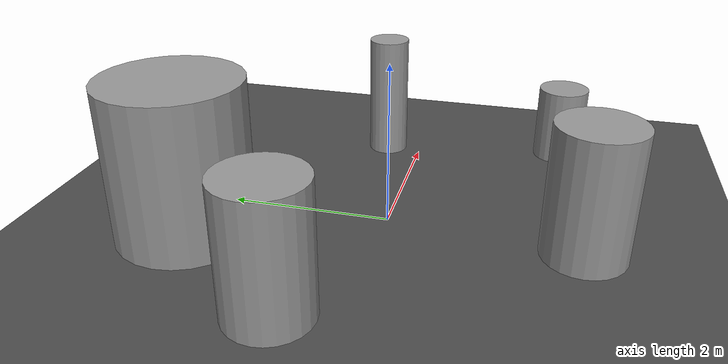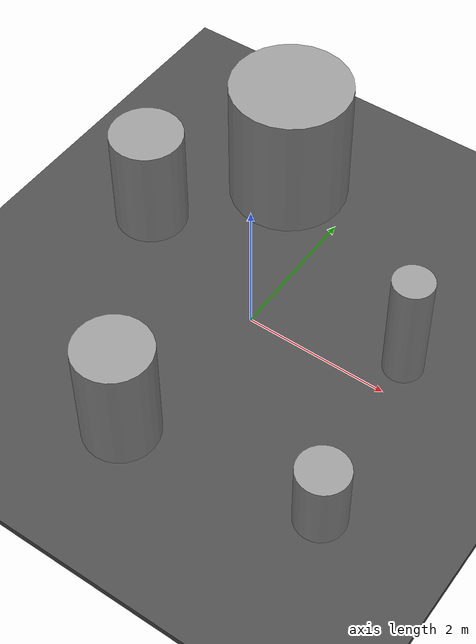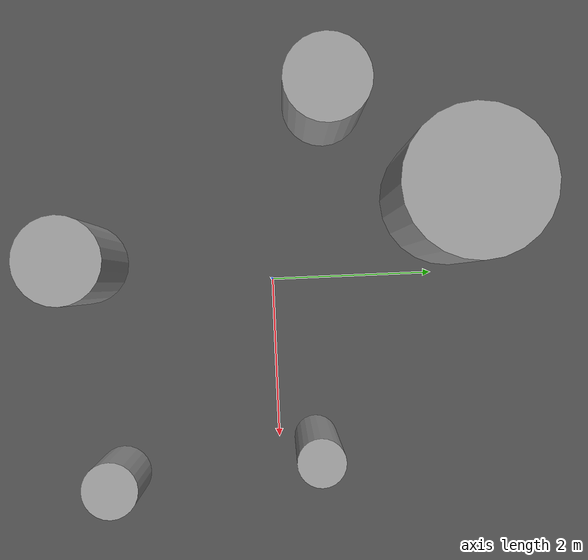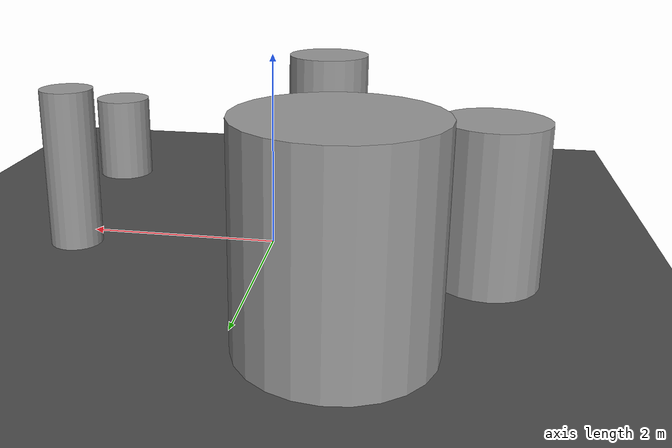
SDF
<sdf version="1.7">
 <world name="default">
  <light name="sun" type="directional">
   <pose>0 0 10 0 -0 0</pose>
   <diffuse>0.8 0.8 0.8 1</diffuse>
   <specular>0.2 0.2 0.2 1</specular>
   <attenuation>
    <range>1000</range>
    <constant>0.9</constant>
    <linear>0.01</linear>
    <quadratic>0.001</quadratic>
   </attenuation>
   <direction>-0.5 0.1 -0.9</direction>
   <spot><inner_angle>0</inner_angle><outer_angle>0</outer_angle><falloff>0</falloff></spot>
  </light>
  <model name="ground_plane">
   <static>1</static>
   <link name="link">
    <collision name="collision">
     <geometry><plane><normal>0 0 1</normal><size>100 100</size></plane></geometry>
     <surface>
      <contact><collide_bitmask>65535</collide_bitmask></contact>
      <friction><ode><mu>100</mu><mu2>50</mu2></ode></friction>
     </surface>
    </collision>
    <visual name="visual">
     <cast_shadows>0</cast_shadows>
     <geometry><plane><normal>0 0 1</normal><size>100 100</size></plane></geometry>
     <material>
      <script><uri>file://media/materials/scripts/gazebo.material</uri><name>Gazebo/Grey</name></script>
     </material>
    </visual>
   </link>
  </model>
  <model name="asphalt_plane">
   <pose>0.423897 0.506277 0 0 -0 0</pose>
   <static>1</static>
   <link name="link">
    <collision name="collision"><geometry><box><size>200 200 0.1</size></box></geometry></collision>
    <visual name="visual">
     <cast_shadows>0</cast_shadows>
     <geometry><box><size>200 200 0.1</size></box></geometry>
     <material>
      <script>
       <uri>model://asphalt_plane/materials/scripts</uri>
       <uri>model://asphalt_plane/materials/textures</uri>
       <name>vrc/asphalt</name>
      </script>
     </material>
    </visual>
   </link>
  </model>
  <physics name="default_physics" default="0" type="ode">
   <ode>
    <solver>
     <type>quick</type>
     <iters>10</iters>
     <sor>1.3</sor>
     <use_dynamic_moi_rescaling>0</use_dynamic_moi_rescaling>
    </solver>
    <constraints>
     <cfm>0</cfm>
     <erp>0.2</erp>
     <contact_max_correcting_vel>100</contact_max_correcting_vel>
     <contact_surface_layer>0.001</contact_surface_layer>
    </constraints>
   </ode>
   <max_step_size>0.004</max_step_size>
   <real_time_factor>1</real_time_factor>
   <real_time_update_rate>250</real_time_update_rate>
  </physics>
  <gravity>0 0 -9.8066</gravity>
  <magnetic_field>6e-06 2.3e-05 -4.2e-05</magnetic_field>
  <atmosphere type="adiabatic"/>
  <scene><ambient>0.4 0.4 0.4 1</ambient><background>0.7 0.7 0.7 1</background><shadows>1</shadows></scene>
  <spherical_coordinates>
   <surface_model>EARTH_WGS84</surface_model>
   <latitude_deg>0</latitude_deg>
   <longitude_deg>0</longitude_deg>
   <elevation>0</elevation>
   <heading_deg>0</heading_deg>
  </spherical_coordinates>
  <model name="unit_cylinder">
   <pose>2.01292 0.458737 0.863703 -2.6e-05 -1.2e-05 -0.003668</pose>
   <link name="link">
    <inertial>
     <mass>1</mass>
     <inertia><ixx>0.145833</ixx><ixy>0</ixy><ixz>0</ixz><iyy>0.145833</iyy><iyz>0</iyz><izz>0.125</izz></inertia>
    </inertial>
    <collision name="collision">
     <geometry><cylinder><radius>0.26727</radius><length>1.62762</length></cylinder></geometry>
    </collision>
    <visual name="visual">
     <geometry><cylinder><radius>0.26727</radius><length>1.62762</length></cylinder></geometry>
     <material>
      <script><name>Gazebo/Grey</name><uri>file://media/materials/scripts/gazebo.material</uri></script>
     </material>
    </visual>
   </link>
  </model>
  <model name="unit_cylinder_0">
   <pose>-0.281468 -2.31703 0.842919 2.4e-05 2e-06 -0.000155</pose>
   <link name="link">
    <inertial>
     <mass>1</mass>
     <inertia><ixx>0.145833</ixx><ixy>0</ixy><ixz>0</ixz><iyy>0.145833</iyy><iyz>0</iyz><izz>0.125</izz></inertia>
    </inertial>
    <collision name="collision">
     <geometry><cylinder><radius>0.5</radius><length>1.58585</length></cylinder></geometry>
    </collision>
    <visual name="visual">
     <geometry><cylinder><radius>0.5</radius><length>1.58585</length></cylinder></geometry>
     <material>
      <script><name>Gazebo/Grey</name><uri>file://media/materials/scripts/gazebo.material</uri></script>
     </material>
    </visual>
   </link>
  </model>
  <model name="unit_cylinder_1">
   <pose>-2.15575 0.703797 0.820641 -5e-06 2.5e-05 0.000426</pose>
   <link name="link">
    <inertial>
     <mass>1</mass>
     <inertia><ixx>0.145833</ixx><ixy>0</ixy><ixz>0</ixz><iyy>0.145833</iyy><iyz>0</iyz><izz>0.125</izz></inertia>
    </inertial>
    <collision name="collision">
     <geometry><cylinder><radius>0.5</radius><length>1.54127</length></cylinder></geometry>
    </collision>
    <visual name="visual">
     <geometry><cylinder><radius>0.5</radius><length>1.54127</length></cylinder></geometry>
     <material>
      <script><name>Gazebo/Grey</name><uri>file://media/materials/scripts/gazebo.material</uri></script>
     </material>
    </visual>
   </link>
  </model>
  <model name="unit_cylinder_2">
   <pose>2.36621 -1.96999 0.549902 -2.5e-05 5.2e-05 0.00027</pose>
   <link name="link">
    <inertial>
     <mass>1</mass>
     <inertia><ixx>0.145833</ixx><ixy>0</ixy><ixz>0</ixz><iyy>0.145833</iyy><iyz>0</iyz><izz>0.125</izz></inertia>
    </inertial>
    <collision name="collision">
     <geometry><cylinder><radius>0.332047</radius><length>1</length></cylinder></geometry>
    </collision>
    <visual name="visual">
     <geometry><cylinder><radius>0.332047</radius><length>1</length></cylinder></geometry>
     <material>
      <script><name>Gazebo/Grey</name><uri>file://media/materials/scripts/gazebo.material</uri></script>
     </material>
    </visual>
   </link>
  </model>
  <model name="unit_cylinder_3">
   <pose>-0.9192 2.22839 0.996618 -3.1e-05 2.1e-05 0.000556</pose>
   <link name="link">
    <inertial>
     <mass>1</mass>
     <inertia><ixx>0.145833</ixx><ixy>0</ixy><ixz>0</ixz><iyy>0.145833</iyy><iyz>0</iyz><izz>0.125</izz></inertia>
    </inertial>
    <collision name="collision">
     <geometry><cylinder><radius>0.836237</radius><length>1.89318</length></cylinder></geometry>
    </collision>
    <visual name="visual">
     <geometry><cylinder><radius>0.836237</radius><length>1.89318</length></cylinder></geometry>
     <material>
      <script><name>Gazebo/Grey</name><uri>file://media/materials/scripts/gazebo.material</uri></script>
     </material>
    </visual>
   </link>
  </model>
 </world>
</sdf>
